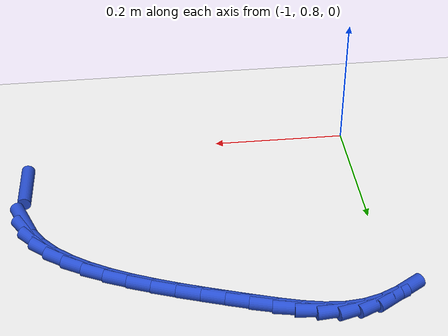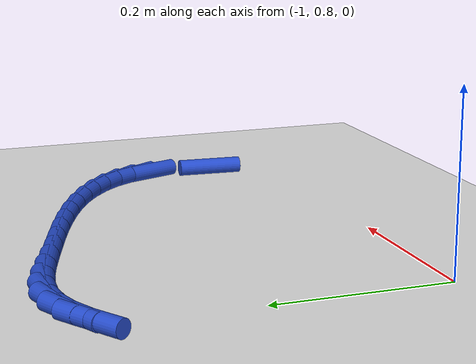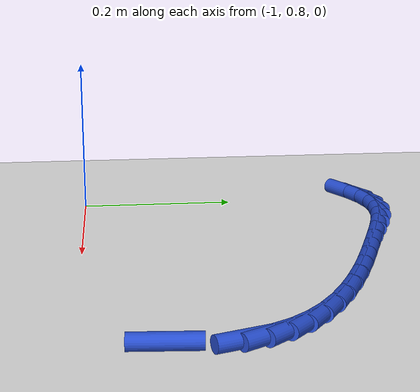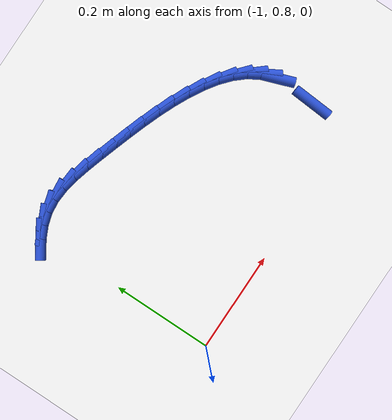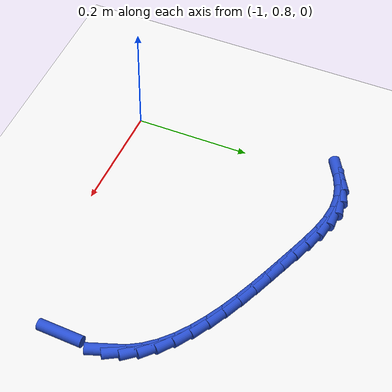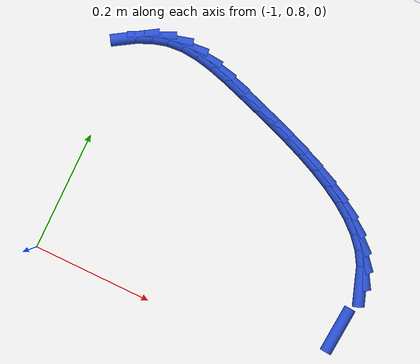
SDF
<sdf version="1.6">
 <world name="default">
  <model name="ground_plane">
   <static>1</static>
   <link name="link">
    <collision name="collision">
     <geometry><plane><normal>0 0 1</normal><size>100 100</size></plane></geometry>
     <surface><friction><ode><mu>100</mu><mu2>50</mu2></ode></friction></surface>
    </collision>
    <visual name="visual">
     <cast_shadows>0</cast_shadows>
     <geometry><plane><normal>0 0 1</normal><size>100 100</size></plane></geometry>
     <material>
      <script><uri>file://media/materials/scripts/gazebo.material</uri><name>Gazebo/WhiteGlow</name></script>
     </material>
    </visual>
   </link>
  </model>
  <model name="line">
   <link name="link_36">
    <pose>-0.5056490199361585 0.8903513257209189 0.01 0 1.57 1.5026991224539465</pose>
    <collision name="collision">
     <geometry><cylinder><radius>0.01</radius><length>0.08</length></cylinder></geometry>
    </collision>
    <visual name="visual">
     <material>
      <script><name>Gazebo/Blue</name><uri>file://media/materials/scripts/gazebo.material</uri></script>
     </material>
     <geometry><cylinder><radius>0.01</radius><length>0.08</length></cylinder></geometry>
    </visual>
   </link>
   <link name="link_39">
    <pose>-0.5059133309697503 0.9757656871221931 0.01 0 1.57 -1.2241364752351638</pose>
    <collision name="collision">
     <geometry><cylinder><radius>0.01</radius><length>0.08</length></cylinder></geometry>
    </collision>
    <visual name="visual">
     <material>
      <script><name>Gazebo/Blue</name><uri>file://media/materials/scripts/gazebo.material</uri></script>
     </material>
     <geometry><cylinder><radius>0.01</radius><length>0.08</length></cylinder></geometry>
    </visual>
   </link>
   <link name="link_40">
    <pose>-0.5148322589054996 1.0004549058077012 0.01 0 1.57 -1.023262559468139</pose>
    <collision name="collision">
     <geometry><cylinder><radius>0.01</radius><length>0.08</length></cylinder></geometry>
    </collision>
    <visual name="visual">
     <material>
      <script><name>Gazebo/Blue</name><uri>file://media/materials/scripts/gazebo.material</uri></script>
     </material>
     <geometry><cylinder><radius>0.01</radius><length>0.08</length></cylinder></geometry>
    </visual>
   </link>
   <link name="link_41">
    <pose>-0.5285980987758302 1.0230323291960275 0.01 0 1.57 -0.8517413830774647</pose>
    <collision name="collision">
     <geometry><cylinder><radius>0.01</radius><length>0.08</length></cylinder></geometry>
    </collision>
    <visual name="visual">
     <material>
      <script><name>Gazebo/Blue</name><uri>file://media/materials/scripts/gazebo.material</uri></script>
     </material>
     <geometry><cylinder><radius>0.01</radius><length>0.08</length></cylinder></geometry>
    </visual>
   </link>
   <link name="link_42">
    <pose>-0.5466550911980685 1.0436595273315272 0.01 0 1.57 -0.7128264715513303</pose>
    <collision name="collision">
     <geometry><cylinder><radius>0.01</radius><length>0.08</length></cylinder></geometry>
    </collision>
    <visual name="visual">
     <material>
      <script><name>Gazebo/Blue</name><uri>file://media/materials/scripts/gazebo.material</uri></script>
     </material>
     <geometry><cylinder><radius>0.01</radius><length>0.08</length></cylinder></geometry>
    </visual>
   </link>
   <link name="link_43">
    <pose>-0.5684474767895419 1.0624980702585576 0.01 0 1.57 -0.6034609514073228</pose>
    <collision name="collision">
     <geometry><cylinder><radius>0.01</radius><length>0.08</length></cylinder></geometry>
    </collision>
    <visual name="visual">
     <material>
      <script><name>Gazebo/Blue</name><uri>file://media/materials/scripts/gazebo.material</uri></script>
     </material>
     <geometry><cylinder><radius>0.01</radius><length>0.08</length></cylinder></geometry>
    </visual>
   </link>
   <link name="link_44">
    <pose>-0.5934194961675768 1.0797095280214746 0.01 0 1.57 -0.5185137760650269</pose>
    <collision name="collision">
     <geometry><cylinder><radius>0.01</radius><length>0.08</length></cylinder></geometry>
    </collision>
    <visual name="visual">
     <material>
      <script><name>Gazebo/Blue</name><uri>file://media/materials/scripts/gazebo.material</uri></script>
     </material>
     <geometry><cylinder><radius>0.01</radius><length>0.08</length></cylinder></geometry>
    </visual>
   </link>
   <link name="link_45">
    <pose>-0.6210153899495005 1.095455470664635 0.01 0 1.57 -0.4530744160981379</pose>
    <collision name="collision">
     <geometry><cylinder><radius>0.01</radius><length>0.08</length></cylinder></geometry>
    </collision>
    <visual name="visual">
     <material>
      <script><name>Gazebo/Blue</name><uri>file://media/materials/scripts/gazebo.material</uri></script>
     </material>
     <geometry><cylinder><radius>0.01</radius><length>0.08</length></cylinder></geometry>
    </visual>
   </link>
   <link name="link_46">
    <pose>-0.6506793987526397 1.1098974682323945 0.01 0 1.57 -0.4032192590794387</pose>
    <collision name="collision">
     <geometry><cylinder><radius>0.01</radius><length>0.08</length></cylinder></geometry>
    </collision>
    <visual name="visual">
     <material>
      <script><name>Gazebo/Blue</name><uri>file://media/materials/scripts/gazebo.material</uri></script>
     </material>
     <geometry><cylinder><radius>0.01</radius><length>0.08</length></cylinder></geometry>
    </visual>
   </link>
   <link name="link_47">
    <pose>-0.6818557631943213 1.12319709076911 0.01 0 1.57 -0.36608860404115146</pose>
    <collision name="collision">
     <geometry><cylinder><radius>0.01</radius><length>0.08</length></cylinder></geometry>
    </collision>
    <visual name="visual">
     <material>
      <script><name>Gazebo/Blue</name><uri>file://media/materials/scripts/gazebo.material</uri></script>
     </material>
     <geometry><cylinder><radius>0.01</radius><length>0.08</length></cylinder></geometry>
    </visual>
   </link>
   <link name="link_48">
    <pose>-0.7139887238918723 1.135515908319138 0.01 0 1.57 -0.33975898950383704</pose>
    <collision name="collision">
     <geometry><cylinder><radius>0.01</radius><length>0.08</length></cylinder></geometry>
    </collision>
    <visual name="visual">
     <material>
      <script><name>Gazebo/Blue</name><uri>file://media/materials/scripts/gazebo.material</uri></script>
     </material>
     <geometry><cylinder><radius>0.01</radius><length>0.08</length></cylinder></geometry>
    </visual>
   </link>
   <link name="link_49">
    <pose>-0.7465225214626197 1.1470154909268344 0.01 0 1.57 -0.32311080591856434</pose>
    <collision name="collision">
     <geometry><cylinder><radius>0.01</radius><length>0.08</length></cylinder></geometry>
    </collision>
    <visual name="visual">
     <material>
      <script><name>Gazebo/Blue</name><uri>file://media/materials/scripts/gazebo.material</uri></script>
     </material>
     <geometry><cylinder><radius>0.01</radius><length>0.08</length></cylinder></geometry>
    </visual>
   </link>
   <link name="link_50">
    <pose>-0.77890139652389 1.157857408636556 0.01 0 1.57 -0.31568637820141704</pose>
    <collision name="collision">
     <geometry><cylinder><radius>0.01</radius><length>0.08</length></cylinder></geometry>
    </collision>
    <visual name="visual">
     <material>
      <script><name>Gazebo/Blue</name><uri>file://media/materials/scripts/gazebo.material</uri></script>
     </material>
     <geometry><cylinder><radius>0.01</radius><length>0.08</length></cylinder></geometry>
    </visual>
   </link>
   <link name="link_51">
    <pose>-0.8105707882015886 1.1682009128701278 0.01 0 1.57 -0.30598695560043626</pose>
    <collision name="collision">
     <geometry><cylinder><radius>0.01</radius><length>0.08</length></cylinder></geometry>
    </collision>
    <visual name="visual">
     <material>
      <script><name>Gazebo/Blue</name><uri>file://media/materials/scripts/gazebo.material</uri></script>
     </material>
     <geometry><cylinder><radius>0.01</radius><length>0.08</length></cylinder></geometry>
    </visual>
   </link>
   <link name="link_52">
    <pose>-0.8411534471776743 1.177862229912794 0.01 0 1.57 -0.26789478470234374</pose>
    <collision name="collision">
     <geometry><cylinder><radius>0.01</radius><length>0.08</length></cylinder></geometry>
    </collision>
    <visual name="visual">
     <material>
      <script><name>Gazebo/Blue</name><uri>file://media/materials/scripts/gazebo.material</uri></script>
     </material>
     <geometry><cylinder><radius>0.01</radius><length>0.08</length></cylinder></geometry>
    </visual>
   </link>
   <link name="link_53">
    <pose>-0.8706353895954002 1.1859548163756126 0.01 0 1.57 -0.19295387005662493</pose>
    <collision name="collision">
     <geometry><cylinder><radius>0.01</radius><length>0.08</length></cylinder></geometry>
    </collision>
    <visual name="visual">
     <material>
      <script><name>Gazebo/Blue</name><uri>file://media/materials/scripts/gazebo.material</uri></script>
     </material>
     <geometry><cylinder><radius>0.01</radius><length>0.08</length></cylinder></geometry>
    </visual>
   </link>
   <link name="link_54">
    <pose>-0.8990471331057648 1.191506036704464 0.01 0 1.57 -0.07428996178930831</pose>
    <collision name="collision">
     <geometry><cylinder><radius>0.01</radius><length>0.08</length></cylinder></geometry>
    </collision>
    <visual name="visual">
     <material>
      <script><name>Gazebo/Blue</name><uri>file://media/materials/scripts/gazebo.material</uri></script>
     </material>
     <geometry><cylinder><radius>0.01</radius><length>0.08</length></cylinder></geometry>
    </visual>
   </link>
   <link name="link_55">
    <pose>-0.9264191953597644 1.1935432553452294 0.01 0 1.57 0.09249061467516058</pose>
    <collision name="collision">
     <geometry><cylinder><radius>0.01</radius><length>0.08</length></cylinder></geometry>
    </collision>
    <visual name="visual">
     <material>
      <script><name>Gazebo/Blue</name><uri>file://media/materials/scripts/gazebo.material</uri></script>
     </material>
     <geometry><cylinder><radius>0.01</radius><length>0.08</length></cylinder></geometry>
    </visual>
   </link>
   <link name="link_56">
    <pose>-0.9527824007447323 1.1910979294364163 0.01 0 1.57 0.28172885762238264</pose>
    <collision name="collision">
     <geometry><cylinder><radius>0.01</radius><length>0.08</length></cylinder></geometry>
    </collision>
    <visual name="visual">
     <material>
      <script><name>Gazebo/Blue</name><uri>file://media/materials/scripts/gazebo.material</uri></script>
     </material>
     <geometry><cylinder><radius>0.01</radius><length>0.08</length></cylinder></geometry>
    </visual>
   </link>
   <link name="link_57">
    <pose>-0.9782078650014595 1.1837391117840754 0.01 0 1.57 0.4411974261630803</pose>
    <collision name="collision">
     <geometry><cylinder><radius>0.01</radius><length>0.08</length></cylinder></geometry>
    </collision>
    <visual name="visual">
     <material>
      <script><name>Gazebo/Blue</name><uri>file://media/materials/scripts/gazebo.material</uri></script>
     </material>
     <geometry><cylinder><radius>0.01</radius><length>0.08</length></cylinder></geometry>
    </visual>
   </link>
   <link name="link_58">
    <pose>-1.0028467250167623 1.1721035537876994 0.01 0 1.57 0.5628252597484974</pose>
    <collision name="collision">
     <geometry><cylinder><radius>0.01</radius><length>0.08</length></cylinder></geometry>
    </collision>
    <visual name="visual">
     <material>
      <script><name>Gazebo/Blue</name><uri>file://media/materials/scripts/gazebo.material</uri></script>
     </material>
     <geometry><cylinder><radius>0.01</radius><length>0.08</length></cylinder></geometry>
    </visual>
   </link>
  </model>
 </world>
</sdf>
